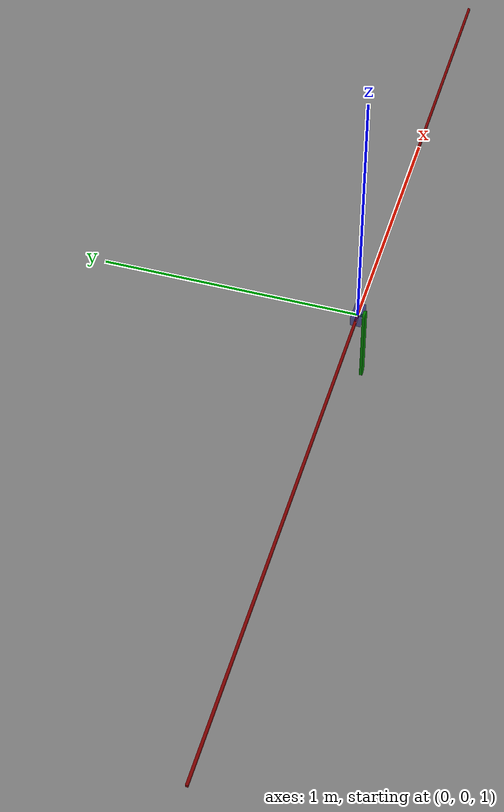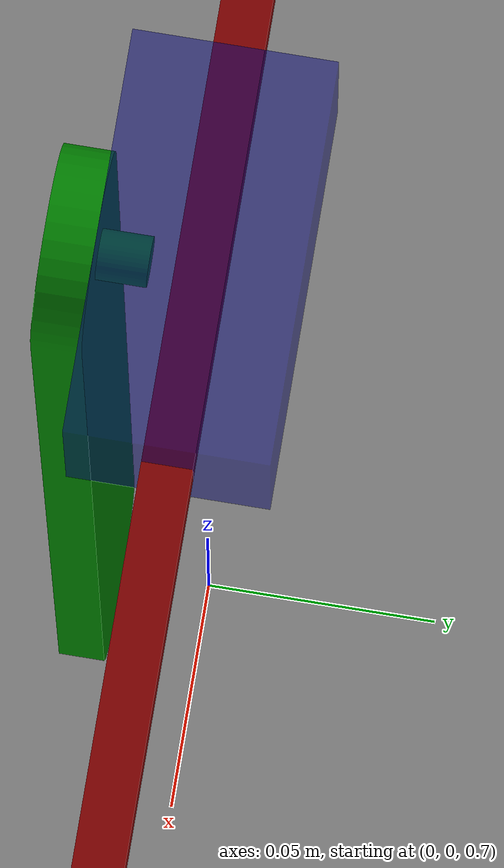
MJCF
<mujoco model="cartpole">
  <compiler angle="radian" meshdir="meshes" autolimits="true" />
  <option timestep="0.01" gravity="0 0 -9.81" wind="0 0 0" integrator="implicitfast"
        density="1.225"
        viscosity="1.8e-5" />

    <visual>
        <global realtime="1" />
        <quality shadowsize="16384" numslices="28" offsamples="4" />
        <headlight diffuse="1 1 1" specular="0.5 0.5 0.5" active="1" />
        <rgba fog="1 0 0 1" haze="1 1 1 1" />
    </visual>

    <default>
      <geom solref=".5e-4" solimp="0.9 0.99 1e-4" fluidcoef="0.5 0.25 0.5 2.0 1.0" />
      <default class="card">
          <geom type="mesh" mesh="card" mass="1.84e-4" fluidshape="ellipsoid" contype="0"
              conaffinity="0" />
      </default>
      <default class="collision">
          <geom type="box" mass="0" size="0.047 0.032 .00035" group="3" friction=".1" />
      </default>
    </default>

  <asset>
    <texture name="plane" type="2d" builtin="checker" rgb1=".1 .1 .1" rgb2=".9 .9 .9"
            width="512" height="512" mark="cross" markrgb=".8 .8 .8" />
    <material name="plane" reflectance="0.3" texture="plane" texrepeat="1 1" texuniform="true" />
    <material name="box" rgba="0 0.5 0 1" emission="0" />

    <mesh name="carpole - car-2_mesh" file="carpole - car-2.STL" scale="1 1 1"/>
    <mesh name="carpole - pole-3_mesh" file="carpole - pole-3.STL" scale="1 1 1"/>
    <mesh name="carpole - rail-2_mesh" file="carpole - rail-2.STL" scale="1 1 1"/>
  </asset>

  <worldbody>
    <geom name="floor" pos="0 0 0" size="10 10 .1" type="plane" material="plane"
        condim="3" />
    <light directional="true" ambient=".3 .3 .3" pos="30 30 30" dir="0 -2 -1"
        diffuse=".5 .5 .5" specular=".5 .5 .5" />

    <body name="part_02_carpole - rail-2" pos="0 0 1" euler="0 0 0">
      <geom name="geom_02_carpole - rail-2" type="mesh" mesh="carpole - rail-2_mesh" pos="0 0 0" mass="1.0799999517202383" rgba="0.5 0 0 1"/>
      <body name="part_00_carpole - car-2" pos="0 0 0" euler="0 0 0">
        <joint name="slider" type="slide" limited="true" axis="1 0 0" range="-1.8 1.8" solreflimit=".08 1" damping="5e-4" />
        <geom name="geom_00_carpole - car-2" type="mesh" mesh="carpole - car-2_mesh" pos="0 0 0" mass="0.1" rgba="0 0 0.5 0.5"/>
        <body name="part_01_carpole - pole-3" pos="0 0 0" euler="0 0 0">
          <joint name="hinge_1" axis="0 1 0" damping="2e-4" />
          <geom name="geom_01_carpole - pole-3" type="mesh" mesh="carpole - pole-3_mesh" pos="0 0 0" mass="0.1" rgba="0 0.5 0 1"/>
        </body>
      </body>
    </body>

  </worldbody>

  <actuator>
    <motor name="slide" joint="slider" gear="20" ctrllimited="true" ctrlrange="-1 1"/>
  </actuator>
</mujoco>
